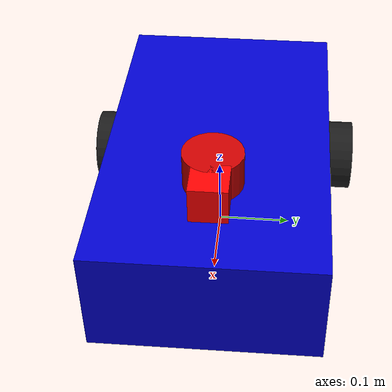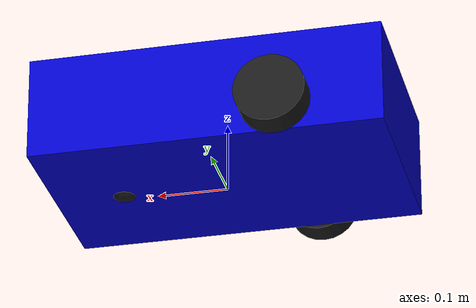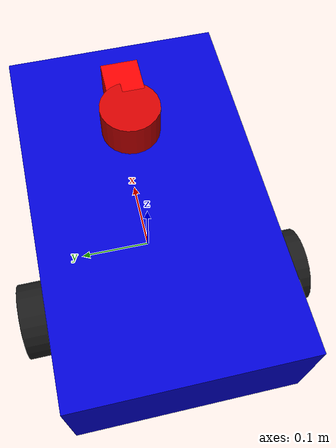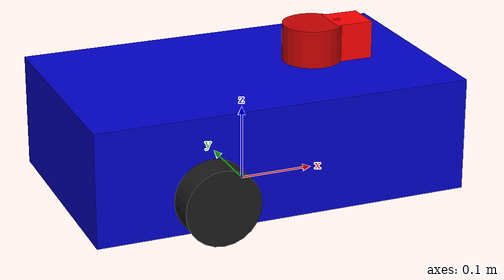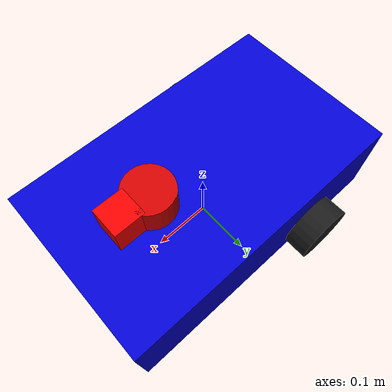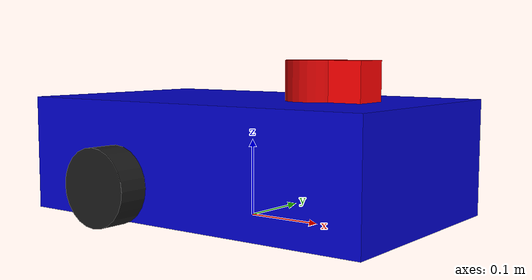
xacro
<?xml version="1.0"?>
<robot xmlns:xacro="http://www.ros.org/wiki/xacro" name="diff_drive_robot">

  <xacro:include filename="robot.gazebo" />

  <xacro:property name="body_length" value="0.5"/>
  <xacro:property name="body_width" value="0.3"/>
  <xacro:property name="body_height" value="0.15"/>
  <xacro:property name="body_mass" value="5.0"/>

  <xacro:property name="wheel_radius" value="0.05"/>
  <xacro:property name="wheel_width" value="0.04"/>
  <xacro:property name="wheel_mass" value="0.5"/>
  <xacro:property name="wheel_ygap" value="0.02"/>

  <xacro:property name="caster_radius" value="0.03"/>
  <xacro:property name="caster_mass" value="0.1"/>

  <material name="blue"><color rgba="0.0 0.0 0.8 1.0"/></material>
  <material name="black"><color rgba="0.1 0.1 0.1 1.0"/></material>
  <material name="red"><color rgba="0.8 0.0 0.0 1.0"/></material>

  <!-- Base Footprint -->
  <link name="base_footprint"/>

  <joint name="base_footprint_joint" type="fixed">
    <parent link="base_footprint"/>
    <child link="base_link"/>
    <origin xyz="0 0 0.08" rpy="0 0 0"/>
  </joint>

  <!-- Base Link -->
  <link name="base_link">
    <visual>
      <geometry><box size="${body_length} ${body_width} ${body_height}"/></geometry>
      <material name="blue"/>
    </visual>
    <collision>
      <geometry><box size="${body_length} ${body_width} ${body_height}"/></geometry>
    </collision>
    <inertial>
      <mass value="${body_mass}"/>
      <inertia ixx="0.0468" ixy="0.0" ixz="0.0" iyy="0.1135" iyz="0.0" izz="0.1416"/>
    </inertial>
  </link>

  <!-- Left Wheel -->
  <link name="left_wheel">
    <visual>
      <origin rpy="1.5708 0 0" xyz="0 0 0"/>
      <geometry><cylinder radius="${wheel_radius}" length="${wheel_width}"/></geometry>
      <material name="black"/>
    </visual>
    <collision>
      <origin rpy="1.5708 0 0" xyz="0 0 0"/>
      <geometry><cylinder radius="${wheel_radius}" length="${wheel_width}"/></geometry>
    </collision>
    <inertial>
      <mass value="${wheel_mass}"/>
      <inertia ixx="0.000378" ixy="0.0" ixz="0.0" iyy="0.000378" iyz="0.0" izz="0.000625"/>
    </inertial>
  </link>

  <joint name="left_wheel_joint" type="continuous">
    <parent link="base_link"/>
    <child link="left_wheel"/>
    <origin xyz="-0.1 ${body_width/2 + wheel_ygap} -0.03" rpy="0 0 0"/>
    <axis xyz="0 1 0"/>
  </joint>

  <!-- Right Wheel -->
  <link name="right_wheel">
    <visual>
      <origin rpy="1.5708 0 0" xyz="0 0 0"/>
      <geometry><cylinder radius="${wheel_radius}" length="${wheel_width}"/></geometry>
      <material name="black"/>
    </visual>
    <collision>
      <origin rpy="1.5708 0 0" xyz="0 0 0"/>
      <geometry><cylinder radius="${wheel_radius}" length="${wheel_width}"/></geometry>
    </collision>
    <inertial>
      <mass value="${wheel_mass}"/>
      <inertia ixx="0.000378" ixy="0.0" ixz="0.0" iyy="0.000378" iyz="0.0" izz="0.000625"/>
    </inertial>
  </link>

  <joint name="right_wheel_joint" type="continuous">
    <parent link="base_link"/>
    <child link="right_wheel"/>
    <origin xyz="-0.1 -${body_width/2 + wheel_ygap} -0.03" rpy="0 0 0"/>
    <axis xyz="0 1 0"/>
  </joint>

  <!-- Caster Wheel -->
  <link name="caster_wheel">
    <visual>
      <geometry><sphere radius="${caster_radius}"/></geometry>
      <material name="black"/>
    </visual>
    <collision>
      <geometry><sphere radius="${caster_radius}"/></geometry>
    </collision>
    <inertial>
      <mass value="${caster_mass}"/>
      <inertia ixx="0.000036" ixy="0.0" ixz="0.0" iyy="0.000036" iyz="0.0" izz="0.000036"/>
    </inertial>
  </link>

  <joint name="caster_joint" type="fixed">
    <parent link="base_link"/>
    <child link="caster_wheel"/>
    <origin xyz="0.15 0.0 -0.05" rpy="0 0 0"/>
  </joint>

  <!-- LiDAR Sensor Link -->
  <link name="lidar_link">
    <visual>
      <geometry><cylinder radius="0.04" length="0.05"/></geometry>
      <material name="red"/>
    </visual>
    <collision>
      <geometry><cylinder radius="0.04" length="0.05"/></geometry>
    </collision>
    <inertial>
      <mass value="0.1"/>
      <inertia ixx="0.0001" ixy="0" ixz="0" iyy="0.0001" iyz="0" izz="0.0001"/>
    </inertial>
  </link>

  <joint name="lidar_joint" type="fixed">
    <parent link="base_link"/>
    <child link="lidar_link"/>
    <origin xyz="0.1 0.0 ${body_height/2 + 0.025}" rpy="0 0 0"/>
  </joint>

  <!-- Camera Joint -->
  <joint name="camera_joint" type="fixed">
    <parent link="base_link"/>
    <child link="camera_link"/>
    <origin xyz="0.15 0 0.1" rpy="0 0 0"/>
  </joint>

  <!-- Camera Link -->
  <link name="camera_link">
    <visual>
      <geometry>
        <box size="0.05 0.05 0.05"/>
      </geometry>
      <material name="red">
        <color rgba="1.0 0.0 0.0 1.0"/>
      </material>
    </visual>
  </link>

</robot>
